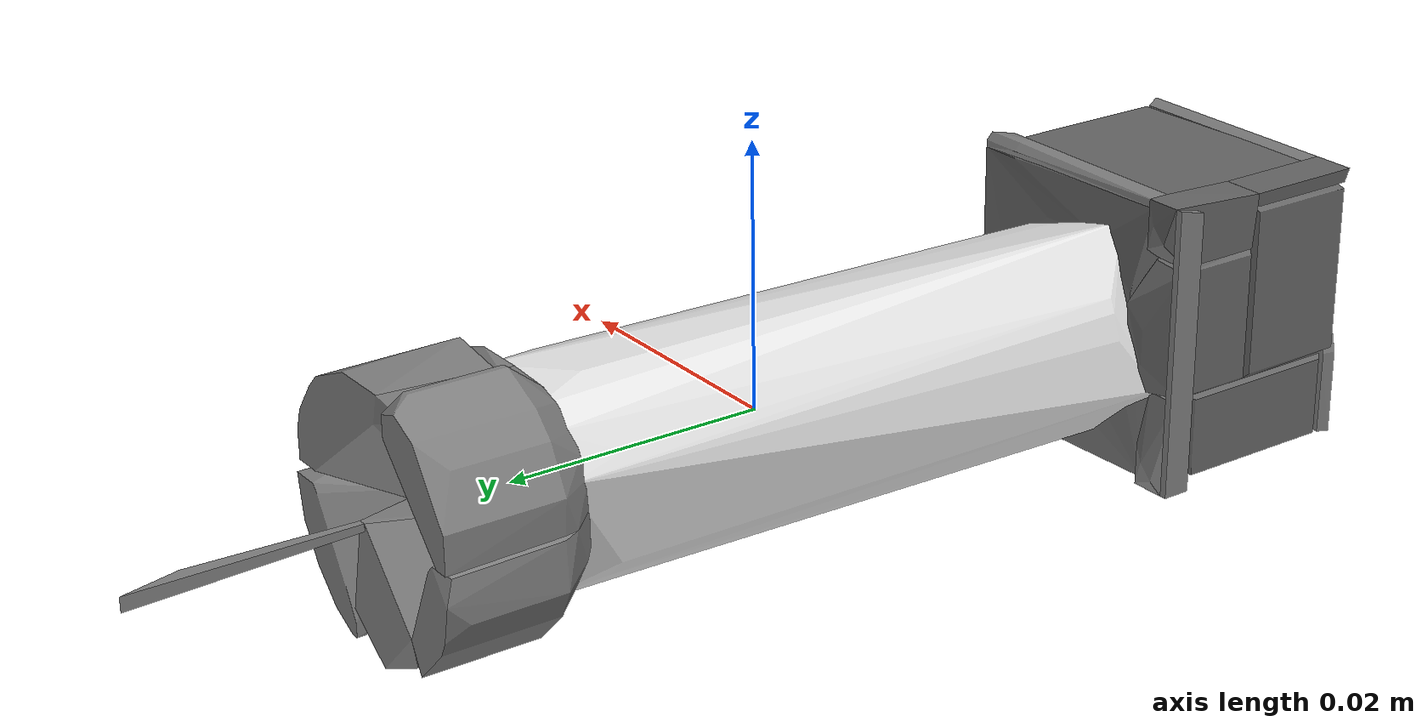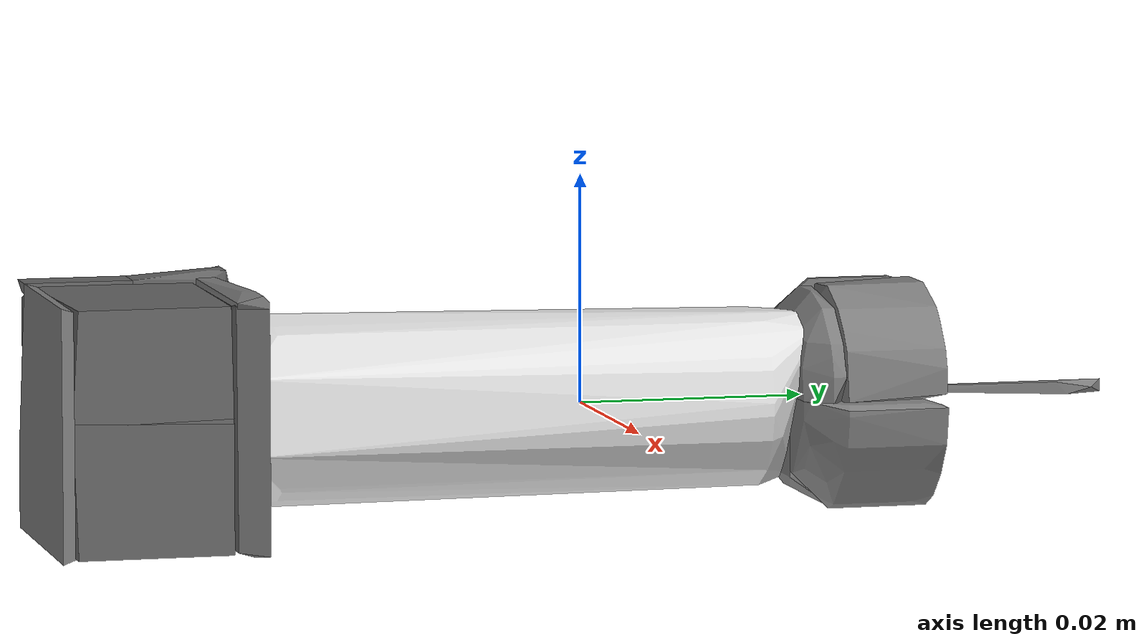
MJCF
<mujoco model="shapenet42-1">
  <asset>
    <mesh file="meshes/shapenet42-1/shapenet42-1_0.stl" name="shapenet42-1_0" scale="0.1 0.1 0.1"/>
    <mesh file="meshes/shapenet42-1/shapenet42-1_1.stl" name="shapenet42-1_1" scale="0.1 0.1 0.1"/>
    <mesh file="meshes/shapenet42-1/shapenet42-1_2.stl" name="shapenet42-1_2" scale="0.1 0.1 0.1"/>
    <mesh file="meshes/shapenet42-1/shapenet42-1_3.stl" name="shapenet42-1_3" scale="0.1 0.1 0.1"/>
    <mesh file="meshes/shapenet42-1/shapenet42-1_4.stl" name="shapenet42-1_4" scale="0.1 0.1 0.1"/>
    <mesh file="meshes/shapenet42-1/shapenet42-1_5.stl" name="shapenet42-1_5" scale="0.1 0.1 0.1"/>
    <mesh file="meshes/shapenet42-1/shapenet42-1_6.stl" name="shapenet42-1_6" scale="0.1 0.1 0.1"/>
    <mesh file="meshes/shapenet42-1/shapenet42-1_7.stl" name="shapenet42-1_7" scale="0.1 0.1 0.1"/>
    <mesh file="meshes/shapenet42-1/shapenet42-1_8.stl" name="shapenet42-1_8" scale="0.1 0.1 0.1"/>
    <mesh file="meshes/shapenet42-1/shapenet42-1_9.stl" name="shapenet42-1_9" scale="0.1 0.1 0.1"/>
    <mesh file="meshes/shapenet42-1/shapenet42-1_10.stl" name="shapenet42-1_10" scale="0.1 0.1 0.1"/>
    <mesh file="meshes/shapenet42-1/shapenet42-1_11.stl" name="shapenet42-1_11" scale="0.1 0.1 0.1"/>
    <mesh file="meshes/shapenet42-1/shapenet42-1_12.stl" name="shapenet42-1_12" scale="0.1 0.1 0.1"/>
    <mesh file="meshes/shapenet42-1/shapenet42-1_13.stl" name="shapenet42-1_13" scale="0.1 0.1 0.1"/>
    <mesh file="meshes/shapenet42-1/shapenet42-1_14.stl" name="shapenet42-1_14" scale="0.1 0.1 0.1"/>
    <mesh file="meshes/shapenet42-1/shapenet42-1_15.stl" name="shapenet42-1_15" scale="0.1 0.1 0.1"/>
    <mesh file="meshes/shapenet42-1/shapenet42-1_16.stl" name="shapenet42-1_16" scale="0.1 0.1 0.1"/>
    <mesh file="meshes/shapenet42-1/shapenet42-1_17.stl" name="shapenet42-1_17" scale="0.1 0.1 0.1"/>
    <mesh file="meshes/shapenet42-1/shapenet42-1_18.stl" name="shapenet42-1_18" scale="0.1 0.1 0.1"/>
    <mesh file="meshes/shapenet42-1/shapenet42-1_19.stl" name="shapenet42-1_19" scale="0.1 0.1 0.1"/>
  </asset>
  <worldbody>
    <body>
      <body name="collision">
        <geom pos="0 0 0" mesh="shapenet42-1_0" type="mesh" solimp="0.998 0.998 0.001" solref="0.001 1" density="100" friction="0.95 0.3 0.1" rgba="0.5 0.5 0.5 1" group="1" condim="4"/>
        <geom pos="0 0 0" mesh="shapenet42-1_1" type="mesh" solimp="0.998 0.998 0.001" solref="0.001 1" density="100" friction="0.95 0.3 0.1" rgba="0.5 0.5 0.5 1" group="1" condim="4"/>
        <geom pos="0 0 0" mesh="shapenet42-1_2" type="mesh" solimp="0.998 0.998 0.001" solref="0.001 1" density="100" friction="0.95 0.3 0.1" rgba="0.4 0.4 0.4 1" group="1" condim="4"/>
        <geom pos="0 0 0" mesh="shapenet42-1_3" type="mesh" solimp="0.998 0.998 0.001" solref="0.001 1" density="100" friction="0.95 0.3 0.1" rgba="0.4 0.4 0.4 1" group="1" condim="4"/>
        <geom pos="0 0 0" mesh="shapenet42-1_4" type="mesh" solimp="0.998 0.998 0.001" solref="0.001 1" density="100" friction="0.95 0.3 0.1" rgba="0.5 0.5 0.5 1" group="1" condim="4"/>
        <geom pos="0 0 0" mesh="shapenet42-1_5" type="mesh" solimp="0.998 0.998 0.001" solref="0.001 1" density="100" friction="0.95 0.3 0.1" rgba="0.4 0.4 0.4 1" group="1" condim="4"/>
        <geom pos="0 0 0" mesh="shapenet42-1_6" type="mesh" solimp="0.998 0.998 0.001" solref="0.001 1" density="100" friction="0.95 0.3 0.1" rgba="0.5 0.5 0.5 1" group="1" condim="4"/>
        <geom pos="0 0 0" mesh="shapenet42-1_7" type="mesh" solimp="0.998 0.998 0.001" solref="0.001 1" density="100" friction="0.95 0.3 0.1" rgba="0.4 0.4 0.4 1" group="1" condim="4"/>
        <geom pos="0 0 0" mesh="shapenet42-1_8" type="mesh" solimp="0.998 0.998 0.001" solref="0.001 1" density="100" friction="0.95 0.3 0.1" rgba="0.4 0.4 0.4 1" group="1" condim="4"/>
        <geom pos="0 0 0" mesh="shapenet42-1_9" type="mesh" solimp="0.998 0.998 0.001" solref="0.001 1" density="100" friction="0.95 0.3 0.1" rgba="0.4 0.4 0.4 1" group="1" condim="4"/>
        <geom pos="0 0 0" mesh="shapenet42-1_10" type="mesh" solimp="0.998 0.998 0.001" solref="0.001 1" density="100" friction="0.95 0.3 0.1" rgba="0.4 0.4 0.4 1" group="1" condim="4"/>
        <geom pos="0 0 0" mesh="shapenet42-1_11" type="mesh" solimp="0.998 0.998 0.001" solref="0.001 1" density="100" friction="0.95 0.3 0.1" rgba="0.4 0.4 0.4 1" group="1" condim="4"/>
        <geom pos="0 0 0" mesh="shapenet42-1_12" type="mesh" solimp="0.998 0.998 0.001" solref="0.001 1" density="100" friction="0.95 0.3 0.1" rgba="0.5 0.5 0.5 1" group="1" condim="4"/>
        <geom pos="0 0 0" mesh="shapenet42-1_13" type="mesh" solimp="0.998 0.998 0.001" solref="0.001 1" density="100" friction="0.95 0.3 0.1" rgba="0.5 0.5 0.5 1" group="1" condim="4"/>
        <geom pos="0 0 0" mesh="shapenet42-1_14" type="mesh" solimp="0.998 0.998 0.001" solref="0.001 1" density="100" friction="0.95 0.3 0.1" rgba="0.5 0.5 0.5 1" group="1" condim="4"/>
        <geom pos="0 0 0" mesh="shapenet42-1_15" type="mesh" solimp="0.998 0.998 0.001" solref="0.001 1" density="100" friction="0.95 0.3 0.1" rgba="0.5 0.5 0.5 1" group="1" condim="4"/>
        <geom pos="0 0 0" mesh="shapenet42-1_16" type="mesh" solimp="0.998 0.998 0.001" solref="0.001 1" density="100" friction="0.95 0.3 0.1" rgba="0.5 0.5 0.5 1" group="1" condim="4"/>
        <geom pos="0 0 0" mesh="shapenet42-1_17" type="mesh" solimp="0.998 0.998 0.001" solref="0.001 1" density="100" friction="0.95 0.3 0.1" rgba="0.5 0.5 0.5 1" group="1" condim="4"/>
        <geom pos="0 0 0" mesh="shapenet42-1_18" type="mesh" solimp="0.998 0.998 0.001" solref="0.001 1" density="100" friction="0.95 0.3 0.1" rgba="0.9 0.9 0.9 1" group="1" condim="4"/>
        <geom pos="0 0 0" mesh="shapenet42-1_19" type="mesh" solimp="0.998 0.998 0.001" solref="0.001 1" density="100" friction="0.95 0.3 0.1" rgba="0.5 0.5 0.5 1" group="1" condim="4"/>
      </body>
      <body name="visual">
        <geom pos="0 0 0" mesh="shapenet42-1_0" type="mesh" rgba="0 1 0 1" conaffinity="0" contype="0" group="0" mass="0.0001"/>
        <geom pos="0 0 0" mesh="shapenet42-1_1" type="mesh" rgba="0 1 0 1" conaffinity="0" contype="0" group="0" mass="0.0001"/>
        <geom pos="0 0 0" mesh="shapenet42-1_2" type="mesh" rgba="0 1 0 1" conaffinity="0" contype="0" group="0" mass="0.0001"/>
        <geom pos="0 0 0" mesh="shapenet42-1_3" type="mesh" rgba="0 1 0 1" conaffinity="0" contype="0" group="0" mass="0.0001"/>
        <geom pos="0 0 0" mesh="shapenet42-1_4" type="mesh" rgba="0 1 0 1" conaffinity="0" contype="0" group="0" mass="0.0001"/>
        <geom pos="0 0 0" mesh="shapenet42-1_5" type="mesh" rgba="0 1 0 1" conaffinity="0" contype="0" group="0" mass="0.0001"/>
        <geom pos="0 0 0" mesh="shapenet42-1_6" type="mesh" rgba="0 1 0 1" conaffinity="0" contype="0" group="0" mass="0.0001"/>
        <geom pos="0 0 0" mesh="shapenet42-1_7" type="mesh" rgba="0 1 0 1" conaffinity="0" contype="0" group="0" mass="0.0001"/>
        <geom pos="0 0 0" mesh="shapenet42-1_8" type="mesh" rgba="0 1 0 1" conaffinity="0" contype="0" group="0" mass="0.0001"/>
        <geom pos="0 0 0" mesh="shapenet42-1_9" type="mesh" rgba="0 1 0 1" conaffinity="0" contype="0" group="0" mass="0.0001"/>
        <geom pos="0 0 0" mesh="shapenet42-1_10" type="mesh" rgba="0 1 0 1" conaffinity="0" contype="0" group="0" mass="0.0001"/>
        <geom pos="0 0 0" mesh="shapenet42-1_11" type="mesh" rgba="0 1 0 1" conaffinity="0" contype="0" group="0" mass="0.0001"/>
        <geom pos="0 0 0" mesh="shapenet42-1_12" type="mesh" rgba="0 1 0 1" conaffinity="0" contype="0" group="0" mass="0.0001"/>
        <geom pos="0 0 0" mesh="shapenet42-1_13" type="mesh" rgba="0 1 0 1" conaffinity="0" contype="0" group="0" mass="0.0001"/>
        <geom pos="0 0 0" mesh="shapenet42-1_14" type="mesh" rgba="0 1 0 1" conaffinity="0" contype="0" group="0" mass="0.0001"/>
        <geom pos="0 0 0" mesh="shapenet42-1_15" type="mesh" rgba="0 1 0 1" conaffinity="0" contype="0" group="0" mass="0.0001"/>
        <geom pos="0 0 0" mesh="shapenet42-1_16" type="mesh" rgba="0 1 0 1" conaffinity="0" contype="0" group="0" mass="0.0001"/>
        <geom pos="0 0 0" mesh="shapenet42-1_17" type="mesh" rgba="0 1 0 1" conaffinity="0" contype="0" group="0" mass="0.0001"/>
        <geom pos="0 0 0" mesh="shapenet42-1_18" type="mesh" rgba="0 1 0 1" conaffinity="0" contype="0" group="0" mass="0.0001"/>
        <geom pos="0 0 0" mesh="shapenet42-1_19" type="mesh" rgba="0 1 0 1" conaffinity="0" contype="0" group="0" mass="0.0001"/>
      </body>
      <site rgba="0 0 0 0" size="0.005" pos="0 0 -0.06" name="bottom_site"/>
      <site rgba="0 0 0 0" size="0.005" pos="0 0 0.04" name="top_site"/>
      <site rgba="0 0 0 0" size="0.005" pos="0.025 0.025 0" name="horizontal_radius_site"/>
    </body>
  </worldbody>
</mujoco>
